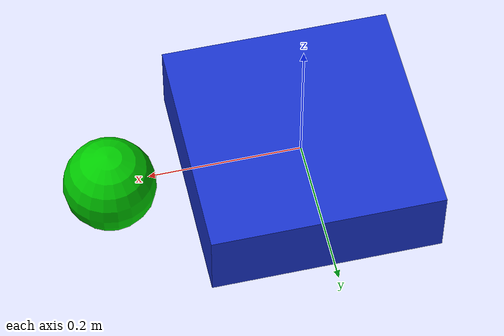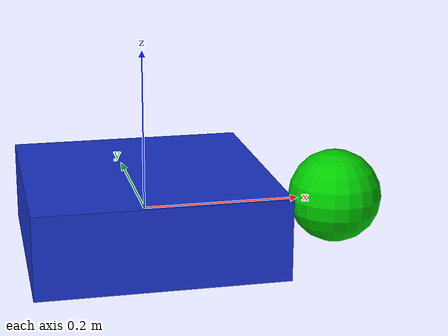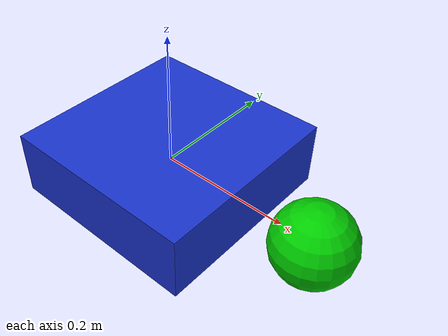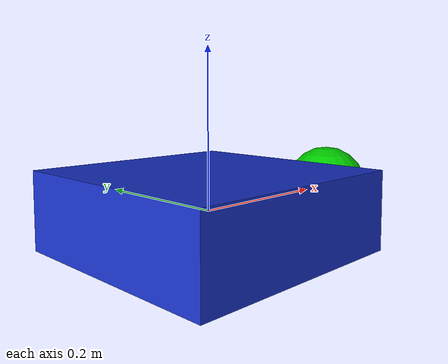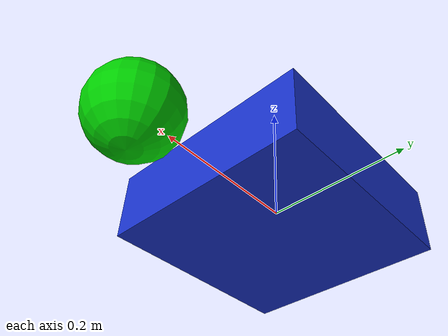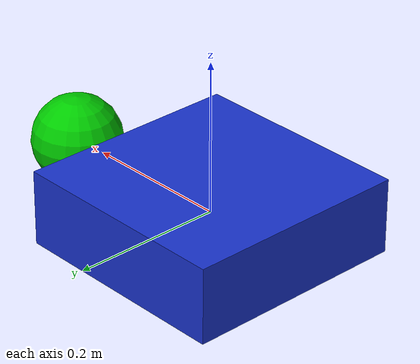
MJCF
<mujoco model="box_poke">
    <compiler coordinate="local" angle="radian" strippath="false" />
    <size njmax="795" nconmax="250" nstack="631875" />

   <asset>
        <material name="MatGnd" specular=".3" shininess=".3" reflectance="0.3" rgba=".5 .55 .5 1"/>
   </asset>

	<visual>
        <map fogstart="1.5" fogend="3"/>
		<quality shadowsize="0"/>
	</visual>

    <option timestep="0.001"
            gravity="0 0 -9.81"
            viscosity="0"/>

   <default>
		<geom margin="0.001"/>
   </default>

    <default class='object'>
        <geom friction="0 0.0 0.0" />
    </default>

    <worldbody>
        <light directional="false" cutoff="90" exponent="1" diffuse="1 1 1" specular="0 0 0" pos="1 0 1.5" dir="-1 0 -2.5"/>
        <geom name="ground" type="plane" pos="0 0 -0.925" size="4 4 .05" rgba="0. 0. 0. 1"/>
        <geom class='object' name="tableTop"  type="plane" material="MatGnd"  pos="0. 0. -0.15" size="0.75 0.95 0.5" rgba=".9 .9 .9 1" contype="1" conaffinity="1"/>

        <!--  ================= OBJECT ================= /-->
         <body name="Box" pos="0. 0.0 0.0" quat="0 0 0 1">
            <inertial pos="0 0 0" mass="1" diaginertia="0.001 0.001 0.001" />
            <geom  class="object" name="push_box" type="box"  size="0.15 0.15 0.05" pos="0.0 0.0 -0." rgba="0.1 0.2 0.8 1" user="1" contype="1" conaffinity="1"/>
            <joint name="free_1" type="free" limited='false' damping="0" armature="0" user="010"/>
        </body>

        <!--  ================= FINGER ================= /-->

        <body name="ee_point" pos="0.25 0. 0." quat="0 0 0 1">
            <inertial pos="0 0 0" mass="0.5" diaginertia="0.001 0.001 0.001" />
            <geom  class="object" name="poke_stick" type="sphere"  size="0.06" pos="0. 0.0 -0." rgba="0.0 0.8 0.0 1" user="1" contype="1" conaffinity="1"/>
            <site name="ee_site" type="sphere" size="0.0001"  pos="0. 0. 0" />
            <joint name="free_2" type="free" limited='false' damping="0" armature="0" user="010"/>
        </body>

    </worldbody>

</mujoco>
